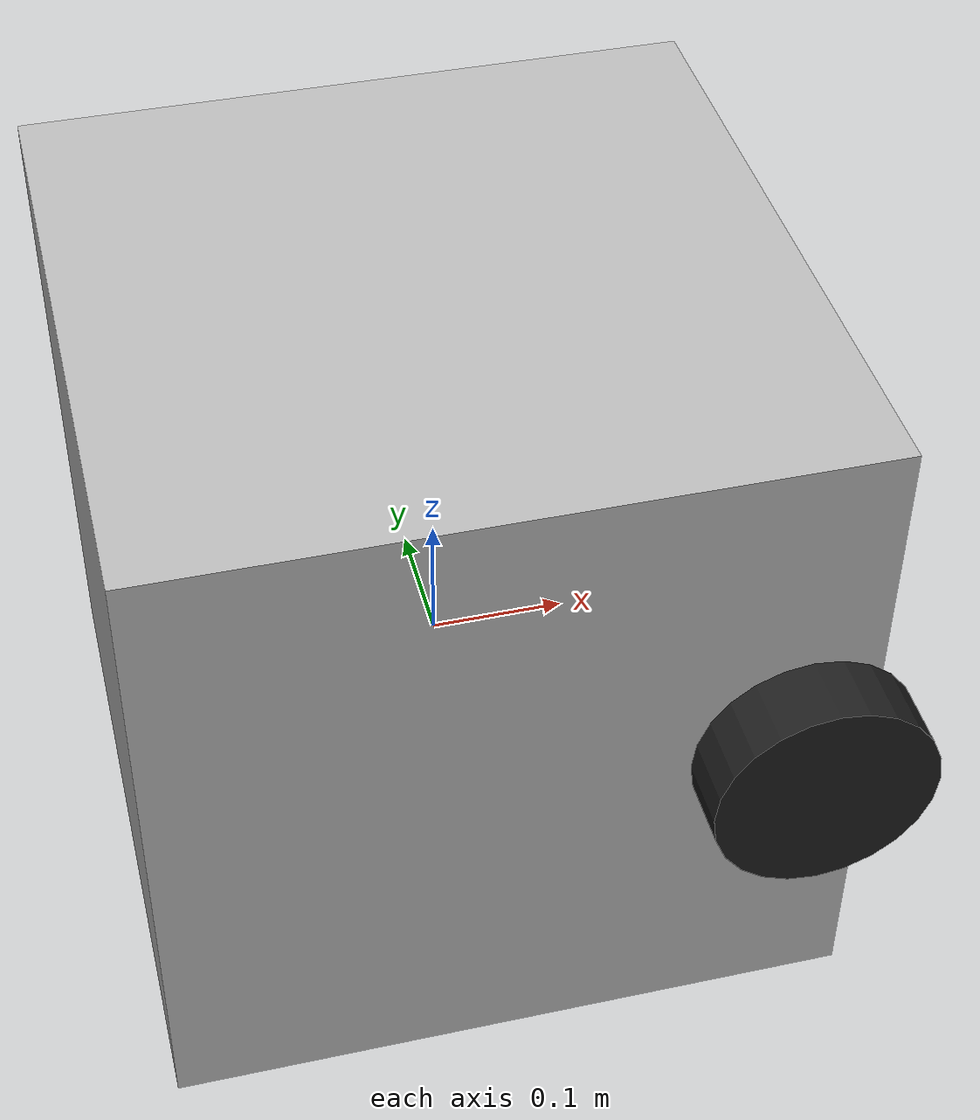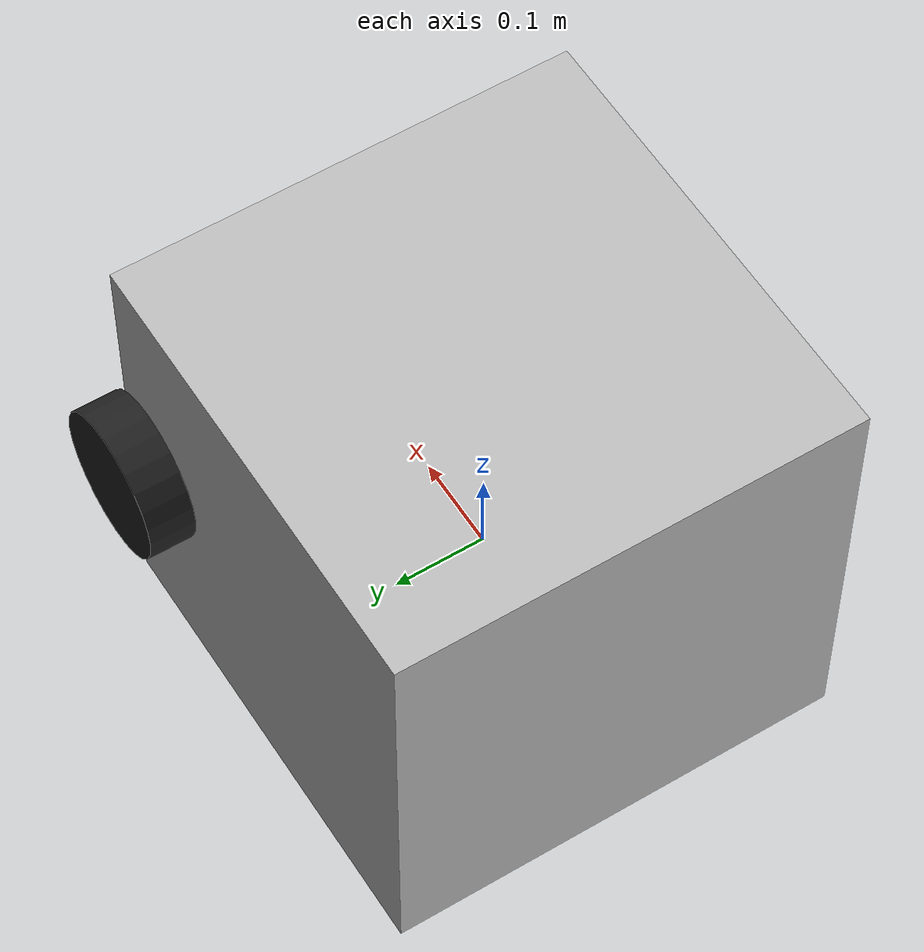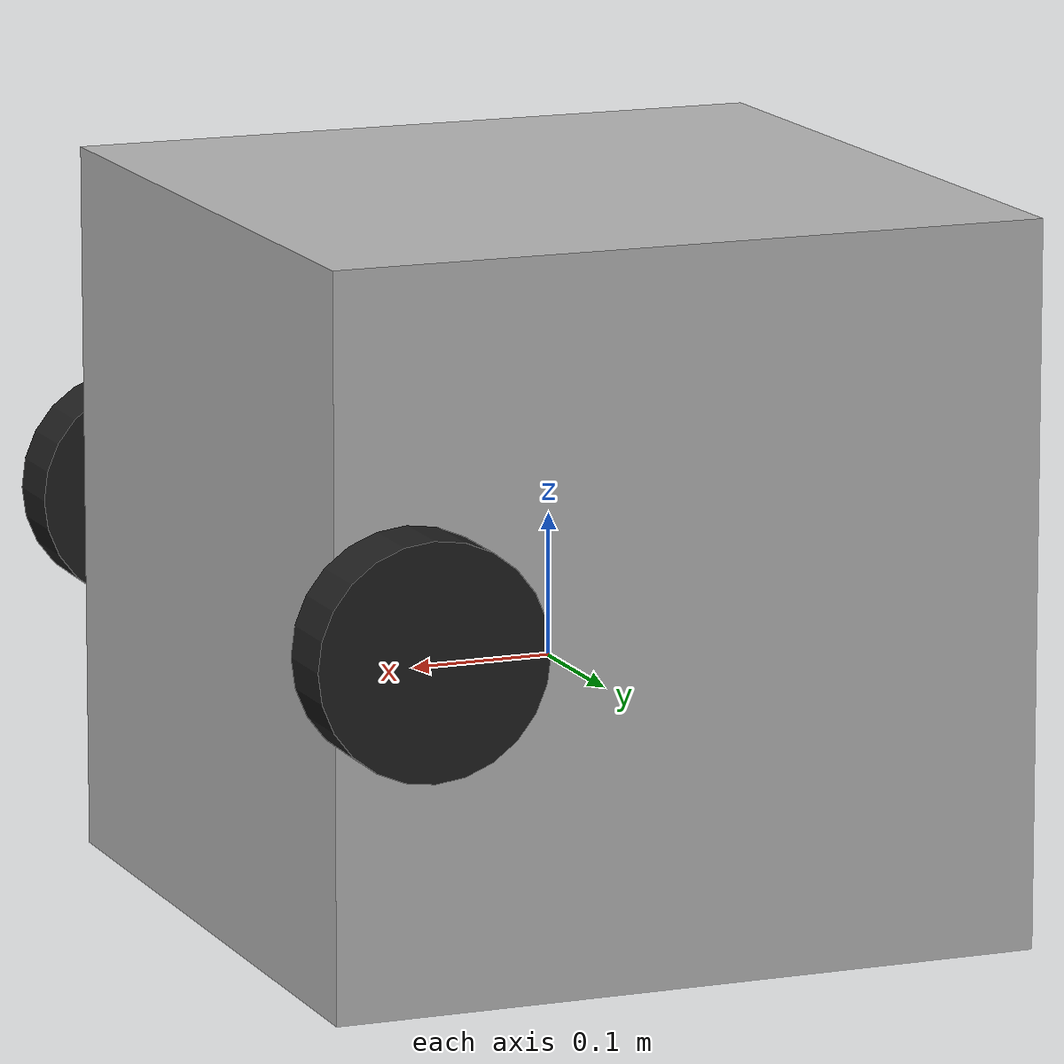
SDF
<?xml version="1.0" ?>
<!-- |    This document was autogenerated by xacro from model.sdf.xacro                | -->
<!-- |    EDITING THIS FILE BY HAND IS NOT RECOMMENDED                                 | -->
<sdf version="1.4">
  <model name="Car" xmlns:xacro="http://www.ros.org/wiki/xacro">
    <static>false</static>
    <link name="chassis">
      <pose>0 0 0.08 0 0 0</pose>
      <collision name="collision">
        <geometry>
          <box>
            <size>0.5 0.5 0.1</size>
          </box>
        </geometry>
      </collision>
      <visual name="visual">
        <geometry>
          <box>
            <size>0.5 0.5 0.5</size>
          </box>
        </geometry>
        <material>
          <script>
            <uri>file://media/materials/scripts/texture.material</uri>
            <name>LandingStation</name>
          </script>
        </material>
      </visual>
      <inertial>
        <mass>50</mass>
        <inertia>
          <ixx>1.08333333333</ixx>
          <iyy>1.08333333333</iyy>
          <izz>2.08333333333</izz>
          <ixy>0</ixy>
          <ixz>0</ixz>
          <iyz>0</iyz>
        </inertia>
      </inertial>
      <collision name="caster_collision">
        <pose>-0.22 0 -0.05 0 0 0</pose>
        <geometry>
          <sphere>
            <radius>0.03</radius>
          </sphere>
        </geometry>
        <surface>
          <friction>
            <ode>
              <mu>0</mu>
              <mu2>0</mu2>
              <slip1>1.0</slip1>
              <slip2>1.0</slip2>
            </ode>
          </friction>
        </surface>
      </collision>
      <visual name="caster_visual">
        <pose>-0.22 0 -0.05 0 0 0</pose>
        <geometry>
          <sphere>
            <radius>0.03</radius>
          </sphere>
        </geometry>
        <material>
          <script>
            <name>Gazebo/Blue</name>
            <uri>__default__</uri>
          </script>
        </material>
      </visual>
    </link>
    <link name="left_wheel">
      <pose>0.2 0.275 0.08 0 1.57079632679 1.57079632679</pose>
      <collision name="left_wheel_collision">
        <geometry>
          <cylinder>
            <radius>0.08</radius>
            <length>0.05</length>
          </cylinder>
        </geometry>
        <surface>
          <friction>
            <ode>
              <mu>1.0</mu>
              <mu2>1.0</mu2>
              <slip1>0.0</slip1>
              <slip2>0.0</slip2>
            </ode>
          </friction>
        </surface>
      </collision>
      <visual name="left_wheel_visual">
        <geometry>
          <cylinder>
            <radius>0.08</radius>
            <length>0.05</length>
          </cylinder>
        </geometry>
        <material>
          <script>
            <name>Gazebo/Black</name>
            <uri>__default__</uri>
          </script>
        </material>
      </visual>
      <inertial>
        <mass>5</mass>
        <inertia>
          <ixx>0.00904166666667</ixx>
          <iyy>0.00904166666667</iyy>
          <izz>0.016</izz>
          <ixy>0</ixy>
          <ixz>0</ixz>
          <iyz>0</iyz>
        </inertia>
      </inertial>
    </link>
    <joint name="left_wheel_hinge" type="revolute">
      <parent>chassis</parent>
      <child>left_wheel</child>
      <pose>0 0 0.025 0 0 0</pose>
      <axis>
        <xyz>0 1 0</xyz>
        <dynamics>
          <damping>1</damping>
        </dynamics>
        <limit>
          <effort>100</effort>
          <velocity>100</velocity>
        </limit>
      </axis>
    </joint>
    <link name="right_wheel">
      <pose>0.2 -0.275 0.08 0 1.57079632679 1.57079632679</pose>
      <collision name="right_wheel_collision">
        <geometry>
          <cylinder>
            <radius>0.08</radius>
            <length>0.05</length>
          </cylinder>
        </geometry>
        <surface>
          <friction>
            <ode>
              <mu>1.0</mu>
              <mu2>1.0</mu2>
              <slip1>0.0</slip1>
              <slip2>0.0</slip2>
            </ode>
          </friction>
        </surface>
      </collision>
      <visual name="right_wheel_visual">
        <geometry>
          <cylinder>
            <radius>0.08</radius>
            <length>0.05</length>
          </cylinder>
        </geometry>
        <material>
          <script>
            <name>Gazebo/Black</name>
            <uri>__default__</uri>
          </script>
        </material>
      </visual>
      <inertial>
        <mass>5</mass>
        <inertia>
          <ixx>0.00904166666667</ixx>
          <iyy>0.00904166666667</iyy>
          <izz>0.016</izz>
          <ixy>0</ixy>
          <ixz>0</ixz>
          <iyz>0</iyz>
        </inertia>
      </inertial>
    </link>
    <joint name="right_wheel_hinge" type="revolute">
      <parent>chassis</parent>
      <child>right_wheel</child>
      <pose>0 0 0.025 0 0 0</pose>
      <axis>
        <xyz>0 1 0</xyz>
        <dynamics>
          <damping>1</damping>
        </dynamics>
        <limit>
          <effort>100</effort>
          <velocity>100</velocity>
        </limit>
      </axis>
    </joint>
  </model>
</sdf>
